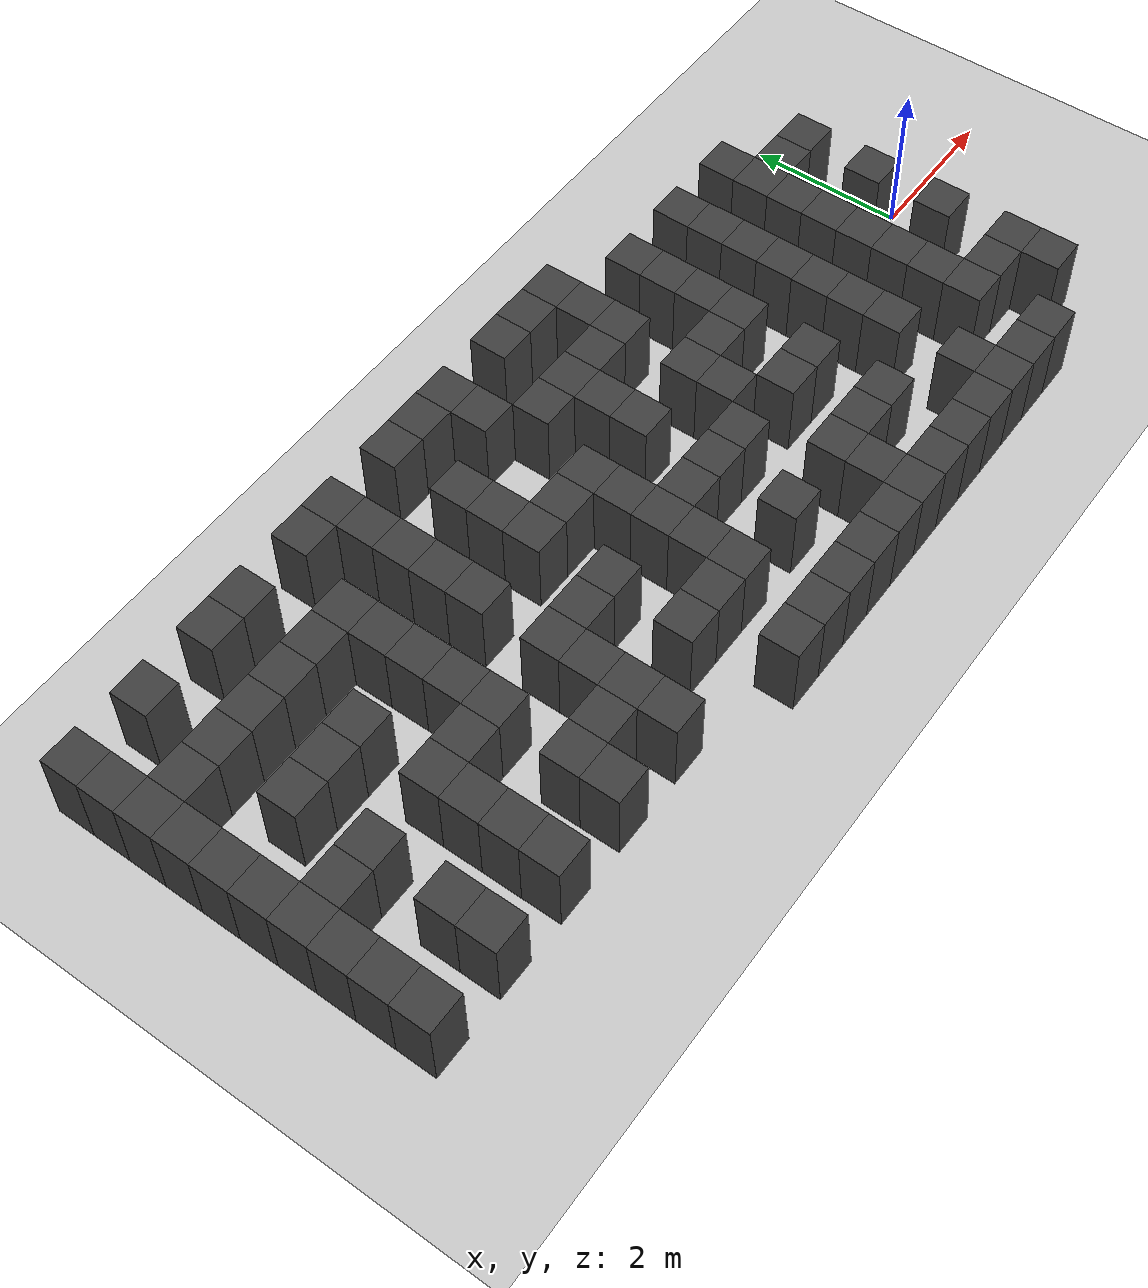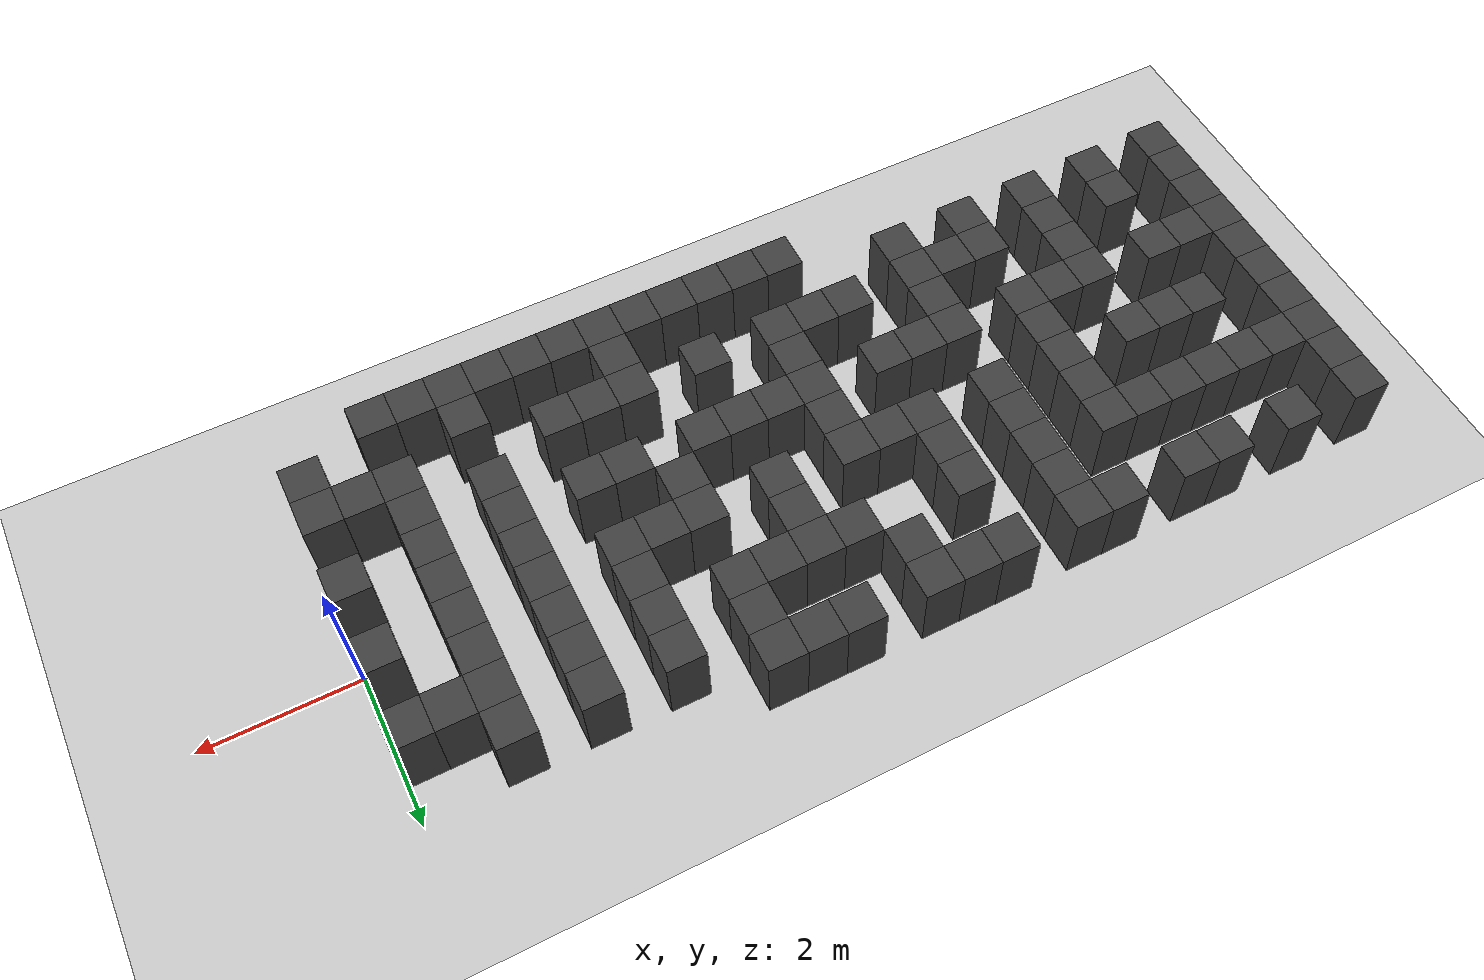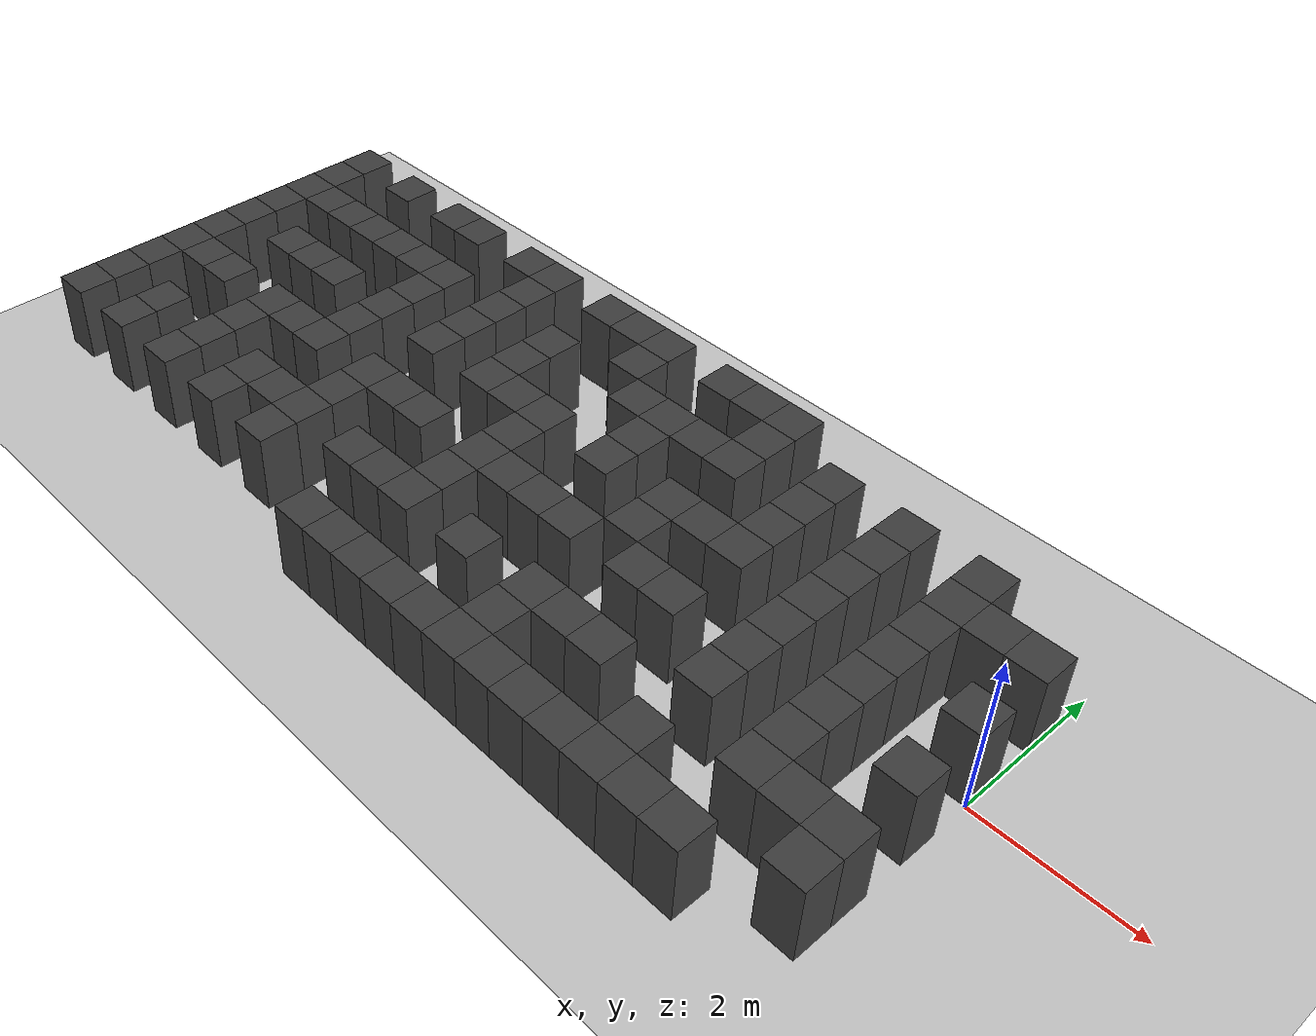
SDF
<sdf version="1.7">
 <world name="map_17508">
  <model name="ground_plane">
   <static>true</static>
   <link name="link">
    <collision name="collision">
     <geometry><plane><normal>0 0 1</normal><size>200 200</size></plane></geometry>
    </collision>
    <visual name="visual">
     <geometry><plane><normal>0 0 1</normal><size>200 200</size></plane></geometry>
     <material><ambient>0.8 0.8 0.8 1</ambient><diffuse>0.8 0.8 0.8 1</diffuse></material>
    </visual>
   </link>
  </model>
  <model name="maze_environment">
   <static>true</static>
   <link name="wall_492">
    <pose>-12.250 2.250 0.500 0 0 0</pose>
    <collision name="col"><geometry><box><size>0.5 0.5 1.0</size></box></geometry></collision>
    <visual name="vis">
     <geometry><box><size>0.5 0.5 1.0</size></box></geometry>
     <material><ambient>0.15 0.15 0.15 1</ambient><diffuse>0.25 0.25 0.25 1</diffuse></material>
    </visual>
   </link>
   <link name="wall_493">
    <pose>-11.250 2.250 0.500 0 0 0</pose>
    <collision name="col"><geometry><box><size>0.5 0.5 1.0</size></box></geometry></collision>
    <visual name="vis">
     <geometry><box><size>0.5 0.5 1.0</size></box></geometry>
     <material><ambient>0.15 0.15 0.15 1</ambient><diffuse>0.25 0.25 0.25 1</diffuse></material>
    </visual>
   </link>
   <link name="wall_494">
    <pose>-10.250 2.250 0.500 0 0 0</pose>
    <collision name="col"><geometry><box><size>0.5 0.5 1.0</size></box></geometry></collision>
    <visual name="vis">
     <geometry><box><size>0.5 0.5 1.0</size></box></geometry>
     <material><ambient>0.15 0.15 0.15 1</ambient><diffuse>0.25 0.25 0.25 1</diffuse></material>
    </visual>
   </link>
   <link name="wall_495">
    <pose>-9.750 2.250 0.500 0 0 0</pose>
    <collision name="col"><geometry><box><size>0.5 0.5 1.0</size></box></geometry></collision>
    <visual name="vis">
     <geometry><box><size>0.5 0.5 1.0</size></box></geometry>
     <material><ambient>0.15 0.15 0.15 1</ambient><diffuse>0.25 0.25 0.25 1</diffuse></material>
    </visual>
   </link>
   <link name="wall_496">
    <pose>-8.750 2.250 0.500 0 0 0</pose>
    <collision name="col"><geometry><box><size>0.5 0.5 1.0</size></box></geometry></collision>
    <visual name="vis">
     <geometry><box><size>0.5 0.5 1.0</size></box></geometry>
     <material><ambient>0.15 0.15 0.15 1</ambient><diffuse>0.25 0.25 0.25 1</diffuse></material>
    </visual>
   </link>
   <link name="wall_497">
    <pose>-8.250 2.250 0.500 0 0 0</pose>
    <collision name="col"><geometry><box><size>0.5 0.5 1.0</size></box></geometry></collision>
    <visual name="vis">
     <geometry><box><size>0.5 0.5 1.0</size></box></geometry>
     <material><ambient>0.15 0.15 0.15 1</ambient><diffuse>0.25 0.25 0.25 1</diffuse></material>
    </visual>
   </link>
   <link name="wall_498">
    <pose>-7.250 2.250 0.500 0 0 0</pose>
    <collision name="col"><geometry><box><size>0.5 0.5 1.0</size></box></geometry></collision>
    <visual name="vis">
     <geometry><box><size>0.5 0.5 1.0</size></box></geometry>
     <material><ambient>0.15 0.15 0.15 1</ambient><diffuse>0.25 0.25 0.25 1</diffuse></material>
    </visual>
   </link>
   <link name="wall_499">
    <pose>-6.750 2.250 0.500 0 0 0</pose>
    <collision name="col"><geometry><box><size>0.5 0.5 1.0</size></box></geometry></collision>
    <visual name="vis">
     <geometry><box><size>0.5 0.5 1.0</size></box></geometry>
     <material><ambient>0.15 0.15 0.15 1</ambient><diffuse>0.25 0.25 0.25 1</diffuse></material>
    </visual>
   </link>
   <link name="wall_500">
    <pose>-6.250 2.250 0.500 0 0 0</pose>
    <collision name="col"><geometry><box><size>0.5 0.5 1.0</size></box></geometry></collision>
    <visual name="vis">
     <geometry><box><size>0.5 0.5 1.0</size></box></geometry>
     <material><ambient>0.15 0.15 0.15 1</ambient><diffuse>0.25 0.25 0.25 1</diffuse></material>
    </visual>
   </link>
   <link name="wall_501">
    <pose>-5.250 2.250 0.500 0 0 0</pose>
    <collision name="col"><geometry><box><size>0.5 0.5 1.0</size></box></geometry></collision>
    <visual name="vis">
     <geometry><box><size>0.5 0.5 1.0</size></box></geometry>
     <material><ambient>0.15 0.15 0.15 1</ambient><diffuse>0.25 0.25 0.25 1</diffuse></material>
    </visual>
   </link>
   <link name="wall_502">
    <pose>-4.750 2.250 0.500 0 0 0</pose>
    <collision name="col"><geometry><box><size>0.5 0.5 1.0</size></box></geometry></collision>
    <visual name="vis">
     <geometry><box><size>0.5 0.5 1.0</size></box></geometry>
     <material><ambient>0.15 0.15 0.15 1</ambient><diffuse>0.25 0.25 0.25 1</diffuse></material>
    </visual>
   </link>
   <link name="wall_503">
    <pose>-4.250 2.250 0.500 0 0 0</pose>
    <collision name="col"><geometry><box><size>0.5 0.5 1.0</size></box></geometry></collision>
    <visual name="vis">
     <geometry><box><size>0.5 0.5 1.0</size></box></geometry>
     <material><ambient>0.15 0.15 0.15 1</ambient><diffuse>0.25 0.25 0.25 1</diffuse></material>
    </visual>
   </link>
   <link name="wall_528">
    <pose>-12.250 1.750 0.500 0 0 0</pose>
    <collision name="col"><geometry><box><size>0.5 0.5 1.0</size></box></geometry></collision>
    <visual name="vis">
     <geometry><box><size>0.5 0.5 1.0</size></box></geometry>
     <material><ambient>0.15 0.15 0.15 1</ambient><diffuse>0.25 0.25 0.25 1</diffuse></material>
    </visual>
   </link>
   <link name="wall_529">
    <pose>-8.250 1.750 0.500 0 0 0</pose>
    <collision name="col"><geometry><box><size>0.5 0.5 1.0</size></box></geometry></collision>
    <visual name="vis">
     <geometry><box><size>0.5 0.5 1.0</size></box></geometry>
     <material><ambient>0.15 0.15 0.15 1</ambient><diffuse>0.25 0.25 0.25 1</diffuse></material>
    </visual>
   </link>
   <link name="wall_530">
    <pose>-6.250 1.750 0.500 0 0 0</pose>
    <collision name="col"><geometry><box><size>0.5 0.5 1.0</size></box></geometry></collision>
    <visual name="vis">
     <geometry><box><size>0.5 0.5 1.0</size></box></geometry>
     <material><ambient>0.15 0.15 0.15 1</ambient><diffuse>0.25 0.25 0.25 1</diffuse></material>
    </visual>
   </link>
   <link name="wall_531">
    <pose>-4.250 1.750 0.500 0 0 0</pose>
    <collision name="col"><geometry><box><size>0.5 0.5 1.0</size></box></geometry></collision>
    <visual name="vis">
     <geometry><box><size>0.5 0.5 1.0</size></box></geometry>
     <material><ambient>0.15 0.15 0.15 1</ambient><diffuse>0.25 0.25 0.25 1</diffuse></material>
    </visual>
   </link>
   <link name="wall_532">
    <pose>-3.250 1.750 0.500 0 0 0</pose>
    <collision name="col"><geometry><box><size>0.5 0.5 1.0</size></box></geometry></collision>
    <visual name="vis">
     <geometry><box><size>0.5 0.5 1.0</size></box></geometry>
     <material><ambient>0.15 0.15 0.15 1</ambient><diffuse>0.25 0.25 0.25 1</diffuse></material>
    </visual>
   </link>
   <link name="wall_533">
    <pose>-2.250 1.750 0.500 0 0 0</pose>
    <collision name="col"><geometry><box><size>0.5 0.5 1.0</size></box></geometry></collision>
    <visual name="vis">
     <geometry><box><size>0.5 0.5 1.0</size></box></geometry>
     <material><ambient>0.15 0.15 0.15 1</ambient><diffuse>0.25 0.25 0.25 1</diffuse></material>
    </visual>
   </link>
   <link name="wall_534">
    <pose>-1.250 1.750 0.500 0 0 0</pose>
    <collision name="col"><geometry><box><size>0.5 0.5 1.0</size></box></geometry></collision>
    <visual name="vis">
     <geometry><box><size>0.5 0.5 1.0</size></box></geometry>
     <material><ambient>0.15 0.15 0.15 1</ambient><diffuse>0.25 0.25 0.25 1</diffuse></material>
    </visual>
   </link>
   <link name="wall_542">
    <pose>-12.250 1.250 0.500 0 0 0</pose>
    <collision name="col"><geometry><box><size>0.5 0.5 1.0</size></box></geometry></collision>
    <visual name="vis">
     <geometry><box><size>0.5 0.5 1.0</size></box></geometry>
     <material><ambient>0.15 0.15 0.15 1</ambient><diffuse>0.25 0.25 0.25 1</diffuse></material>
    </visual>
   </link>
   <link name="wall_543">
    <pose>-11.750 1.250 0.500 0 0 0</pose>
    <collision name="col"><geometry><box><size>0.5 0.5 1.0</size></box></geometry></collision>
    <visual name="vis">
     <geometry><box><size>0.5 0.5 1.0</size></box></geometry>
     <material><ambient>0.15 0.15 0.15 1</ambient><diffuse>0.25 0.25 0.25 1</diffuse></material>
    </visual>
   </link>
   <link name="wall_544">
    <pose>-11.250 1.250 0.500 0 0 0</pose>
    <collision name="col"><geometry><box><size>0.5 0.5 1.0</size></box></geometry></collision>
    <visual name="vis">
     <geometry><box><size>0.5 0.5 1.0</size></box></geometry>
     <material><ambient>0.15 0.15 0.15 1</ambient><diffuse>0.25 0.25 0.25 1</diffuse></material>
    </visual>
   </link>
   <link name="wall_545">
    <pose>-10.750 1.250 0.500 0 0 0</pose>
    <collision name="col"><geometry><box><size>0.5 0.5 1.0</size></box></geometry></collision>
    <visual name="vis">
     <geometry><box><size>0.5 0.5 1.0</size></box></geometry>
     <material><ambient>0.15 0.15 0.15 1</ambient><diffuse>0.25 0.25 0.25 1</diffuse></material>
    </visual>
   </link>
   <link name="wall_546">
    <pose>-10.250 1.250 0.500 0 0 0</pose>
    <collision name="col"><geometry><box><size>0.5 0.5 1.0</size></box></geometry></collision>
    <visual name="vis">
     <geometry><box><size>0.5 0.5 1.0</size></box></geometry>
     <material><ambient>0.15 0.15 0.15 1</ambient><diffuse>0.25 0.25 0.25 1</diffuse></material>
    </visual>
   </link>
   <link name="wall_547">
    <pose>-9.750 1.250 0.500 0 0 0</pose>
    <collision name="col"><geometry><box><size>0.5 0.5 1.0</size></box></geometry></collision>
    <visual name="vis">
     <geometry><box><size>0.5 0.5 1.0</size></box></geometry>
     <material><ambient>0.15 0.15 0.15 1</ambient><diffuse>0.25 0.25 0.25 1</diffuse></material>
    </visual>
   </link>
   <link name="wall_548">
    <pose>-9.250 1.250 0.500 0 0 0</pose>
    <collision name="col"><geometry><box><size>0.5 0.5 1.0</size></box></geometry></collision>
    <visual name="vis">
     <geometry><box><size>0.5 0.5 1.0</size></box></geometry>
     <material><ambient>0.15 0.15 0.15 1</ambient><diffuse>0.25 0.25 0.25 1</diffuse></material>
    </visual>
   </link>
   <link name="wall_549">
    <pose>-8.250 1.250 0.500 0 0 0</pose>
    <collision name="col"><geometry><box><size>0.5 0.5 1.0</size></box></geometry></collision>
    <visual name="vis">
     <geometry><box><size>0.5 0.5 1.0</size></box></geometry>
     <material><ambient>0.15 0.15 0.15 1</ambient><diffuse>0.25 0.25 0.25 1</diffuse></material>
    </visual>
   </link>
   <link name="wall_550">
    <pose>-7.250 1.250 0.500 0 0 0</pose>
    <collision name="col"><geometry><box><size>0.5 0.5 1.0</size></box></geometry></collision>
    <visual name="vis">
     <geometry><box><size>0.5 0.5 1.0</size></box></geometry>
     <material><ambient>0.15 0.15 0.15 1</ambient><diffuse>0.25 0.25 0.25 1</diffuse></material>
    </visual>
   </link>
   <link name="wall_551">
    <pose>-5.750 1.250 0.500 0 0 0</pose>
    <collision name="col"><geometry><box><size>0.5 0.5 1.0</size></box></geometry></collision>
    <visual name="vis">
     <geometry><box><size>0.5 0.5 1.0</size></box></geometry>
     <material><ambient>0.15 0.15 0.15 1</ambient><diffuse>0.25 0.25 0.25 1</diffuse></material>
    </visual>
   </link>
   <link name="wall_552">
    <pose>-5.250 1.250 0.500 0 0 0</pose>
    <collision name="col"><geometry><box><size>0.5 0.5 1.0</size></box></geometry></collision>
    <visual name="vis">
     <geometry><box><size>0.5 0.5 1.0</size></box></geometry>
     <material><ambient>0.15 0.15 0.15 1</ambient><diffuse>0.25 0.25 0.25 1</diffuse></material>
    </visual>
   </link>
   <link name="wall_553">
    <pose>-4.750 1.250 0.500 0 0 0</pose>
    <collision name="col"><geometry><box><size>0.5 0.5 1.0</size></box></geometry></collision>
    <visual name="vis">
     <geometry><box><size>0.5 0.5 1.0</size></box></geometry>
     <material><ambient>0.15 0.15 0.15 1</ambient><diffuse>0.25 0.25 0.25 1</diffuse></material>
    </visual>
   </link>
   <link name="wall_554">
    <pose>-4.250 1.250 0.500 0 0 0</pose>
    <collision name="col"><geometry><box><size>0.5 0.5 1.0</size></box></geometry></collision>
    <visual name="vis">
     <geometry><box><size>0.5 0.5 1.0</size></box></geometry>
     <material><ambient>0.15 0.15 0.15 1</ambient><diffuse>0.25 0.25 0.25 1</diffuse></material>
    </visual>
   </link>
   <link name="wall_555">
    <pose>-3.250 1.250 0.500 0 0 0</pose>
    <collision name="col"><geometry><box><size>0.5 0.5 1.0</size></box></geometry></collision>
    <visual name="vis">
     <geometry><box><size>0.5 0.5 1.0</size></box></geometry>
     <material><ambient>0.15 0.15 0.15 1</ambient><diffuse>0.25 0.25 0.25 1</diffuse></material>
    </visual>
   </link>
   <link name="wall_556">
    <pose>-2.250 1.250 0.500 0 0 0</pose>
    <collision name="col"><geometry><box><size>0.5 0.5 1.0</size></box></geometry></collision>
    <visual name="vis">
     <geometry><box><size>0.5 0.5 1.0</size></box></geometry>
     <material><ambient>0.15 0.15 0.15 1</ambient><diffuse>0.25 0.25 0.25 1</diffuse></material>
    </visual>
   </link>
   <link name="wall_557">
    <pose>-1.250 1.250 0.500 0 0 0</pose>
    <collision name="col"><geometry><box><size>0.5 0.5 1.0</size></box></geometry></collision>
    <visual name="vis">
     <geometry><box><size>0.5 0.5 1.0</size></box></geometry>
     <material><ambient>0.15 0.15 0.15 1</ambient><diffuse>0.25 0.25 0.25 1</diffuse></material>
    </visual>
   </link>
   <link name="wall_558">
    <pose>-0.750 1.250 0.500 0 0 0</pose>
    <collision name="col"><geometry><box><size>0.5 0.5 1.0</size></box></geometry></collision>
    <visual name="vis">
     <geometry><box><size>0.5 0.5 1.0</size></box></geometry>
     <material><ambient>0.15 0.15 0.15 1</ambient><diffuse>0.25 0.25 0.25 1</diffuse></material>
    </visual>
   </link>
   <link name="wall_559">
    <pose>-0.250 1.250 0.500 0 0 0</pose>
    <collision name="col"><geometry><box><size>0.5 0.5 1.0</size></box></geometry></collision>
    <visual name="vis">
     <geometry><box><size>0.5 0.5 1.0</size></box></geometry>
     <material><ambient>0.15 0.15 0.15 1</ambient><diffuse>0.25 0.25 0.25 1</diffuse></material>
    </visual>
   </link>
   <link name="wall_576">
    <pose>-12.250 0.750 0.500 0 0 0</pose>
    <collision name="col"><geometry><box><size>0.5 0.5 1.0</size></box></geometry></collision>
    <visual name="vis">
     <geometry><box><size>0.5 0.5 1.0</size></box></geometry>
     <material><ambient>0.15 0.15 0.15 1</ambient><diffuse>0.25 0.25 0.25 1</diffuse></material>
    </visual>
   </link>
   <link name="wall_577">
    <pose>-9.250 0.750 0.500 0 0 0</pose>
    <collision name="col"><geometry><box><size>0.5 0.5 1.0</size></box></geometry></collision>
    <visual name="vis">
     <geometry><box><size>0.5 0.5 1.0</size></box></geometry>
     <material><ambient>0.15 0.15 0.15 1</ambient><diffuse>0.25 0.25 0.25 1</diffuse></material>
    </visual>
   </link>
   <link name="wall_578">
    <pose>-8.250 0.750 0.500 0 0 0</pose>
    <collision name="col"><geometry><box><size>0.5 0.5 1.0</size></box></geometry></collision>
    <visual name="vis">
     <geometry><box><size>0.5 0.5 1.0</size></box></geometry>
     <material><ambient>0.15 0.15 0.15 1</ambient><diffuse>0.25 0.25 0.25 1</diffuse></material>
    </visual>
   </link>
   <link name="wall_579">
    <pose>-7.250 0.750 0.500 0 0 0</pose>
    <collision name="col"><geometry><box><size>0.5 0.5 1.0</size></box></geometry></collision>
    <visual name="vis">
     <geometry><box><size>0.5 0.5 1.0</size></box></geometry>
     <material><ambient>0.15 0.15 0.15 1</ambient><diffuse>0.25 0.25 0.25 1</diffuse></material>
    </visual>
   </link>
   <link name="wall_580">
    <pose>-5.250 0.750 0.500 0 0 0</pose>
    <collision name="col"><geometry><box><size>0.5 0.5 1.0</size></box></geometry></collision>
    <visual name="vis">
     <geometry><box><size>0.5 0.5 1.0</size></box></geometry>
     <material><ambient>0.15 0.15 0.15 1</ambient><diffuse>0.25 0.25 0.25 1</diffuse></material>
    </visual>
   </link>
   <link name="wall_581">
    <pose>-3.250 0.750 0.500 0 0 0</pose>
    <collision name="col"><geometry><box><size>0.5 0.5 1.0</size></box></geometry></collision>
    <visual name="vis">
     <geometry><box><size>0.5 0.5 1.0</size></box></geometry>
     <material><ambient>0.15 0.15 0.15 1</ambient><diffuse>0.25 0.25 0.25 1</diffuse></material>
    </visual>
   </link>
   <link name="wall_582">
    <pose>-2.250 0.750 0.500 0 0 0</pose>
    <collision name="col"><geometry><box><size>0.5 0.5 1.0</size></box></geometry></collision>
    <visual name="vis">
     <geometry><box><size>0.5 0.5 1.0</size></box></geometry>
     <material><ambient>0.15 0.15 0.15 1</ambient><diffuse>0.25 0.25 0.25 1</diffuse></material>
    </visual>
   </link>
   <link name="wall_583">
    <pose>-1.250 0.750 0.500 0 0 0</pose>
    <collision name="col"><geometry><box><size>0.5 0.5 1.0</size></box></geometry></collision>
    <visual name="vis">
     <geometry><box><size>0.5 0.5 1.0</size></box></geometry>
     <material><ambient>0.15 0.15 0.15 1</ambient><diffuse>0.25 0.25 0.25 1</diffuse></material>
    </visual>
   </link>
   <link name="wall_592">
    <pose>-12.250 0.250 0.500 0 0 0</pose>
    <collision name="col"><geometry><box><size>0.5 0.5 1.0</size></box></geometry></collision>
    <visual name="vis">
     <geometry><box><size>0.5 0.5 1.0</size></box></geometry>
     <material><ambient>0.15 0.15 0.15 1</ambient><diffuse>0.25 0.25 0.25 1</diffuse></material>
    </visual>
   </link>
   <link name="wall_593">
    <pose>-11.250 0.250 0.500 0 0 0</pose>
    <collision name="col"><geometry><box><size>0.5 0.5 1.0</size></box></geometry></collision>
    <visual name="vis">
     <geometry><box><size>0.5 0.5 1.0</size></box></geometry>
     <material><ambient>0.15 0.15 0.15 1</ambient><diffuse>0.25 0.25 0.25 1</diffuse></material>
    </visual>
   </link>
   <link name="wall_594">
    <pose>-10.750 0.250 0.500 0 0 0</pose>
    <collision name="col"><geometry><box><size>0.5 0.5 1.0</size></box></geometry></collision>
    <visual name="vis">
     <geometry><box><size>0.5 0.5 1.0</size></box></geometry>
     <material><ambient>0.15 0.15 0.15 1</ambient><diffuse>0.25 0.25 0.25 1</diffuse></material>
    </visual>
   </link>
   <link name="wall_595">
    <pose>-10.250 0.250 0.500 0 0 0</pose>
    <collision name="col"><geometry><box><size>0.5 0.5 1.0</size></box></geometry></collision>
    <visual name="vis">
     <geometry><box><size>0.5 0.5 1.0</size></box></geometry>
     <material><ambient>0.15 0.15 0.15 1</ambient><diffuse>0.25 0.25 0.25 1</diffuse></material>
    </visual>
   </link>
   <link name="wall_596">
    <pose>-9.250 0.250 0.500 0 0 0</pose>
    <collision name="col"><geometry><box><size>0.5 0.5 1.0</size></box></geometry></collision>
    <visual name="vis">
     <geometry><box><size>0.5 0.5 1.0</size></box></geometry>
     <material><ambient>0.15 0.15 0.15 1</ambient><diffuse>0.25 0.25 0.25 1</diffuse></material>
    </visual>
   </link>
   <link name="wall_597">
    <pose>-8.250 0.250 0.500 0 0 0</pose>
    <collision name="col"><geometry><box><size>0.5 0.5 1.0</size></box></geometry></collision>
    <visual name="vis">
     <geometry><box><size>0.5 0.5 1.0</size></box></geometry>
     <material><ambient>0.15 0.15 0.15 1</ambient><diffuse>0.25 0.25 0.25 1</diffuse></material>
    </visual>
   </link>
   <link name="wall_598">
    <pose>-7.250 0.250 0.500 0 0 0</pose>
    <collision name="col"><geometry><box><size>0.5 0.5 1.0</size></box></geometry></collision>
    <visual name="vis">
     <geometry><box><size>0.5 0.5 1.0</size></box></geometry>
     <material><ambient>0.15 0.15 0.15 1</ambient><diffuse>0.25 0.25 0.25 1</diffuse></material>
    </visual>
   </link>
   <link name="wall_599">
    <pose>-6.750 0.250 0.500 0 0 0</pose>
    <collision name="col"><geometry><box><size>0.5 0.5 1.0</size></box></geometry></collision>
    <visual name="vis">
     <geometry><box><size>0.5 0.5 1.0</size></box></geometry>
     <material><ambient>0.15 0.15 0.15 1</ambient><diffuse>0.25 0.25 0.25 1</diffuse></material>
    </visual>
   </link>
   <link name="wall_600">
    <pose>-6.250 0.250 0.500 0 0 0</pose>
    <collision name="col"><geometry><box><size>0.5 0.5 1.0</size></box></geometry></collision>
    <visual name="vis">
     <geometry><box><size>0.5 0.5 1.0</size></box></geometry>
     <material><ambient>0.15 0.15 0.15 1</ambient><diffuse>0.25 0.25 0.25 1</diffuse></material>
    </visual>
   </link>
   <link name="wall_601">
    <pose>-5.250 0.250 0.500 0 0 0</pose>
    <collision name="col"><geometry><box><size>0.5 0.5 1.0</size></box></geometry></collision>
    <visual name="vis">
     <geometry><box><size>0.5 0.5 1.0</size></box></geometry>
     <material><ambient>0.15 0.15 0.15 1</ambient><diffuse>0.25 0.25 0.25 1</diffuse></material>
    </visual>
   </link>
   <link name="wall_602">
    <pose>-4.250 0.250 0.500 0 0 0</pose>
    <collision name="col"><geometry><box><size>0.5 0.5 1.0</size></box></geometry></collision>
    <visual name="vis">
     <geometry><box><size>0.5 0.5 1.0</size></box></geometry>
     <material><ambient>0.15 0.15 0.15 1</ambient><diffuse>0.25 0.25 0.25 1</diffuse></material>
    </visual>
   </link>
   <link name="wall_603">
    <pose>-3.750 0.250 0.500 0 0 0</pose>
    <collision name="col"><geometry><box><size>0.5 0.5 1.0</size></box></geometry></collision>
    <visual name="vis">
     <geometry><box><size>0.5 0.5 1.0</size></box></geometry>
     <material><ambient>0.15 0.15 0.15 1</ambient><diffuse>0.25 0.25 0.25 1</diffuse></material>
    </visual>
   </link>
   <link name="wall_604">
    <pose>-3.250 0.250 0.500 0 0 0</pose>
    <collision name="col"><geometry><box><size>0.5 0.5 1.0</size></box></geometry></collision>
    <visual name="vis">
     <geometry><box><size>0.5 0.5 1.0</size></box></geometry>
     <material><ambient>0.15 0.15 0.15 1</ambient><diffuse>0.25 0.25 0.25 1</diffuse></material>
    </visual>
   </link>
   <link name="wall_605">
    <pose>-2.250 0.250 0.500 0 0 0</pose>
    <collision name="col"><geometry><box><size>0.5 0.5 1.0</size></box></geometry></collision>
    <visual name="vis">
     <geometry><box><size>0.5 0.5 1.0</size></box></geometry>
     <material><ambient>0.15 0.15 0.15 1</ambient><diffuse>0.25 0.25 0.25 1</diffuse></material>
    </visual>
   </link>
   <link name="wall_606">
    <pose>-1.250 0.250 0.500 0 0 0</pose>
    <collision name="col"><geometry><box><size>0.5 0.5 1.0</size></box></geometry></collision>
    <visual name="vis">
     <geometry><box><size>0.5 0.5 1.0</size></box></geometry>
     <material><ambient>0.15 0.15 0.15 1</ambient><diffuse>0.25 0.25 0.25 1</diffuse></material>
    </visual>
   </link>
   <link name="wall_607">
    <pose>-0.250 0.250 0.500 0 0 0</pose>
    <collision name="col"><geometry><box><size>0.5 0.5 1.0</size></box></geometry></collision>
    <visual name="vis">
     <geometry><box><size>0.5 0.5 1.0</size></box></geometry>
     <material><ambient>0.15 0.15 0.15 1</ambient><diffuse>0.25 0.25 0.25 1</diffuse></material>
    </visual>
   </link>
   <link name="wall_626">
    <pose>-12.250 -0.250 0.500 0 0 0</pose>
    <collision name="col"><geometry><box><size>0.5 0.5 1.0</size></box></geometry></collision>
    <visual name="vis">
     <geometry><box><size>0.5 0.5 1.0</size></box></geometry>
     <material><ambient>0.15 0.15 0.15 1</ambient><diffuse>0.25 0.25 0.25 1</diffuse></material>
    </visual>
   </link>
   <link name="wall_627">
    <pose>-9.250 -0.250 0.500 0 0 0</pose>
    <collision name="col"><geometry><box><size>0.5 0.5 1.0</size></box></geometry></collision>
    <visual name="vis">
     <geometry><box><size>0.5 0.5 1.0</size></box></geometry>
     <material><ambient>0.15 0.15 0.15 1</ambient><diffuse>0.25 0.25 0.25 1</diffuse></material>
    </visual>
   </link>
   <link name="wall_628">
    <pose>-6.250 -0.250 0.500 0 0 0</pose>
    <collision name="col"><geometry><box><size>0.5 0.5 1.0</size></box></geometry></collision>
    <visual name="vis">
     <geometry><box><size>0.5 0.5 1.0</size></box></geometry>
     <material><ambient>0.15 0.15 0.15 1</ambient><diffuse>0.25 0.25 0.25 1</diffuse></material>
    </visual>
   </link>
   <link name="wall_629">
    <pose>-4.250 -0.250 0.500 0 0 0</pose>
    <collision name="col"><geometry><box><size>0.5 0.5 1.0</size></box></geometry></collision>
    <visual name="vis">
     <geometry><box><size>0.5 0.5 1.0</size></box></geometry>
     <material><ambient>0.15 0.15 0.15 1</ambient><diffuse>0.25 0.25 0.25 1</diffuse></material>
    </visual>
   </link>
   <link name="wall_630">
    <pose>-2.250 -0.250 0.500 0 0 0</pose>
    <collision name="col"><geometry><box><size>0.5 0.5 1.0</size></box></geometry></collision>
    <visual name="vis">
     <geometry><box><size>0.5 0.5 1.0</size></box></geometry>
     <material><ambient>0.15 0.15 0.15 1</ambient><diffuse>0.25 0.25 0.25 1</diffuse></material>
    </visual>
   </link>
   <link name="wall_631">
    <pose>-1.250 -0.250 0.500 0 0 0</pose>
    <collision name="col"><geometry><box><size>0.5 0.5 1.0</size></box></geometry></collision>
    <visual name="vis">
     <geometry><box><size>0.5 0.5 1.0</size></box></geometry>
     <material><ambient>0.15 0.15 0.15 1</ambient><diffuse>0.25 0.25 0.25 1</diffuse></material>
    </visual>
   </link>
   <link name="wall_639">
    <pose>-12.250 -0.750 0.500 0 0 0</pose>
    <collision name="col"><geometry><box><size>0.5 0.5 1.0</size></box></geometry></collision>
    <visual name="vis">
     <geometry><box><size>0.5 0.5 1.0</size></box></geometry>
     <material><ambient>0.15 0.15 0.15 1</ambient><diffuse>0.25 0.25 0.25 1</diffuse></material>
    </visual>
   </link>
   <link name="wall_640">
    <pose>-11.750 -0.750 0.500 0 0 0</pose>
    <collision name="col"><geometry><box><size>0.5 0.5 1.0</size></box></geometry></collision>
    <visual name="vis">
     <geometry><box><size>0.5 0.5 1.0</size></box></geometry>
     <material><ambient>0.15 0.15 0.15 1</ambient><diffuse>0.25 0.25 0.25 1</diffuse></material>
    </visual>
   </link>
   <link name="wall_641">
    <pose>-11.250 -0.750 0.500 0 0 0</pose>
    <collision name="col"><geometry><box><size>0.5 0.5 1.0</size></box></geometry></collision>
    <visual name="vis">
     <geometry><box><size>0.5 0.5 1.0</size></box></geometry>
     <material><ambient>0.15 0.15 0.15 1</ambient><diffuse>0.25 0.25 0.25 1</diffuse></material>
    </visual>
   </link>
   <link name="wall_642">
    <pose>-10.250 -0.750 0.500 0 0 0</pose>
    <collision name="col"><geometry><box><size>0.5 0.5 1.0</size></box></geometry></collision>
    <visual name="vis">
     <geometry><box><size>0.5 0.5 1.0</size></box></geometry>
     <material><ambient>0.15 0.15 0.15 1</ambient><diffuse>0.25 0.25 0.25 1</diffuse></material>
    </visual>
   </link>
   <link name="wall_643">
    <pose>-9.750 -0.750 0.500 0 0 0</pose>
    <collision name="col"><geometry><box><size>0.5 0.5 1.0</size></box></geometry></collision>
    <visual name="vis">
     <geometry><box><size>0.5 0.5 1.0</size></box></geometry>
     <material><ambient>0.15 0.15 0.15 1</ambient><diffuse>0.25 0.25 0.25 1</diffuse></material>
    </visual>
   </link>
   <link name="wall_644">
    <pose>-9.250 -0.750 0.500 0 0 0</pose>
    <collision name="col"><geometry><box><size>0.5 0.5 1.0</size></box></geometry></collision>
    <visual name="vis">
     <geometry><box><size>0.5 0.5 1.0</size></box></geometry>
     <material><ambient>0.15 0.15 0.15 1</ambient><diffuse>0.25 0.25 0.25 1</diffuse></material>
    </visual>
   </link>
   <link name="wall_645">
    <pose>-8.250 -0.750 0.500 0 0 0</pose>
    <collision name="col"><geometry><box><size>0.5 0.5 1.0</size></box></geometry></collision>
    <visual name="vis">
     <geometry><box><size>0.5 0.5 1.0</size></box></geometry>
     <material><ambient>0.15 0.15 0.15 1</ambient><diffuse>0.25 0.25 0.25 1</diffuse></material>
    </visual>
   </link>
   <link name="wall_646">
    <pose>-7.750 -0.750 0.500 0 0 0</pose>
    <collision name="col"><geometry><box><size>0.5 0.5 1.0</size></box></geometry></collision>
    <visual name="vis">
     <geometry><box><size>0.5 0.5 1.0</size></box></geometry>
     <material><ambient>0.15 0.15 0.15 1</ambient><diffuse>0.25 0.25 0.25 1</diffuse></material>
    </visual>
   </link>
   <link name="wall_647">
    <pose>-7.250 -0.750 0.500 0 0 0</pose>
    <collision name="col"><geometry><box><size>0.5 0.5 1.0</size></box></geometry></collision>
    <visual name="vis">
     <geometry><box><size>0.5 0.5 1.0</size></box></geometry>
     <material><ambient>0.15 0.15 0.15 1</ambient><diffuse>0.25 0.25 0.25 1</diffuse></material>
    </visual>
   </link>
   <link name="wall_648">
    <pose>-6.250 -0.750 0.500 0 0 0</pose>
    <collision name="col"><geometry><box><size>0.5 0.5 1.0</size></box></geometry></collision>
    <visual name="vis">
     <geometry><box><size>0.5 0.5 1.0</size></box></geometry>
     <material><ambient>0.15 0.15 0.15 1</ambient><diffuse>0.25 0.25 0.25 1</diffuse></material>
    </visual>
   </link>
   <link name="wall_649">
    <pose>-5.750 -0.750 0.500 0 0 0</pose>
    <collision name="col"><geometry><box><size>0.5 0.5 1.0</size></box></geometry></collision>
    <visual name="vis">
     <geometry><box><size>0.5 0.5 1.0</size></box></geometry>
     <material><ambient>0.15 0.15 0.15 1</ambient><diffuse>0.25 0.25 0.25 1</diffuse></material>
    </visual>
   </link>
   <link name="wall_650">
    <pose>-5.250 -0.750 0.500 0 0 0</pose>
    <collision name="col"><geometry><box><size>0.5 0.5 1.0</size></box></geometry></collision>
    <visual name="vis">
     <geometry><box><size>0.5 0.5 1.0</size></box></geometry>
     <material><ambient>0.15 0.15 0.15 1</ambient><diffuse>0.25 0.25 0.25 1</diffuse></material>
    </visual>
   </link>
   <link name="wall_651">
    <pose>-4.750 -0.750 0.500 0 0 0</pose>
    <collision name="col"><geometry><box><size>0.5 0.5 1.0</size></box></geometry></collision>
    <visual name="vis">
     <geometry><box><size>0.5 0.5 1.0</size></box></geometry>
     <material><ambient>0.15 0.15 0.15 1</ambient><diffuse>0.25 0.25 0.25 1</diffuse></material>
    </visual>
   </link>
   <link name="wall_652">
    <pose>-3.750 -0.750 0.500 0 0 0</pose>
    <collision name="col"><geometry><box><size>0.5 0.5 1.0</size></box></geometry></collision>
    <visual name="vis">
     <geometry><box><size>0.5 0.5 1.0</size></box></geometry>
     <material><ambient>0.15 0.15 0.15 1</ambient><diffuse>0.25 0.25 0.25 1</diffuse></material>
    </visual>
   </link>
   <link name="wall_653">
    <pose>-3.250 -0.750 0.500 0 0 0</pose>
    <collision name="col"><geometry><box><size>0.5 0.5 1.0</size></box></geometry></collision>
    <visual name="vis">
     <geometry><box><size>0.5 0.5 1.0</size></box></geometry>
     <material><ambient>0.15 0.15 0.15 1</ambient><diffuse>0.25 0.25 0.25 1</diffuse></material>
    </visual>
   </link>
   <link name="wall_654">
    <pose>-2.250 -0.750 0.500 0 0 0</pose>
    <collision name="col"><geometry><box><size>0.5 0.5 1.0</size></box></geometry></collision>
    <visual name="vis">
     <geometry><box><size>0.5 0.5 1.0</size></box></geometry>
     <material><ambient>0.15 0.15 0.15 1</ambient><diffuse>0.25 0.25 0.25 1</diffuse></material>
    </visual>
   </link>
   <link name="wall_655">
    <pose>-1.250 -0.750 0.500 0 0 0</pose>
    <collision name="col"><geometry><box><size>0.5 0.5 1.0</size></box></geometry></collision>
    <visual name="vis">
     <geometry><box><size>0.5 0.5 1.0</size></box></geometry>
     <material><ambient>0.15 0.15 0.15 1</ambient><diffuse>0.25 0.25 0.25 1</diffuse></material>
    </visual>
   </link>
   <link name="wall_656">
    <pose>-0.250 -0.750 0.500 0 0 0</pose>
    <collision name="col"><geometry><box><size>0.5 0.5 1.0</size></box></geometry></collision>
    <visual name="vis">
     <geometry><box><size>0.5 0.5 1.0</size></box></geometry>
     <material><ambient>0.15 0.15 0.15 1</ambient><diffuse>0.25 0.25 0.25 1</diffuse></material>
    </visual>
   </link>
   <link name="wall_674">
    <pose>-12.250 -1.250 0.500 0 0 0</pose>
    <collision name="col"><geometry><box><size>0.5 0.5 1.0</size></box></geometry></collision>
    <visual name="vis">
     <geometry><box><size>0.5 0.5 1.0</size></box></geometry>
     <material><ambient>0.15 0.15 0.15 1</ambient><diffuse>0.25 0.25 0.25 1</diffuse></material>
    </visual>
   </link>
   <link name="wall_675">
    <pose>-10.250 -1.250 0.500 0 0 0</pose>
    <collision name="col"><geometry><box><size>0.5 0.5 1.0</size></box></geometry></collision>
    <visual name="vis">
     <geometry><box><size>0.5 0.5 1.0</size></box></geometry>
     <material><ambient>0.15 0.15 0.15 1</ambient><diffuse>0.25 0.25 0.25 1</diffuse></material>
    </visual>
   </link>
   <link name="wall_676">
    <pose>-8.250 -1.250 0.500 0 0 0</pose>
    <collision name="col"><geometry><box><size>0.5 0.5 1.0</size></box></geometry></collision>
    <visual name="vis">
     <geometry><box><size>0.5 0.5 1.0</size></box></geometry>
     <material><ambient>0.15 0.15 0.15 1</ambient><diffuse>0.25 0.25 0.25 1</diffuse></material>
    </visual>
   </link>
   <link name="wall_677">
    <pose>-6.250 -1.250 0.500 0 0 0</pose>
    <collision name="col"><geometry><box><size>0.5 0.5 1.0</size></box></geometry></collision>
    <visual name="vis">
     <geometry><box><size>0.5 0.5 1.0</size></box></geometry>
     <material><ambient>0.15 0.15 0.15 1</ambient><diffuse>0.25 0.25 0.25 1</diffuse></material>
    </visual>
   </link>
   <link name="wall_678">
    <pose>-2.250 -1.250 0.500 0 0 0</pose>
    <collision name="col"><geometry><box><size>0.5 0.5 1.0</size></box></geometry></collision>
    <visual name="vis">
     <geometry><box><size>0.5 0.5 1.0</size></box></geometry>
     <material><ambient>0.15 0.15 0.15 1</ambient><diffuse>0.25 0.25 0.25 1</diffuse></material>
    </visual>
   </link>
   <link name="wall_679">
    <pose>-1.250 -1.250 0.500 0 0 0</pose>
    <collision name="col"><geometry><box><size>0.5 0.5 1.0</size></box></geometry></collision>
    <visual name="vis">
     <geometry><box><size>0.5 0.5 1.0</size></box></geometry>
     <material><ambient>0.15 0.15 0.15 1</ambient><diffuse>0.25 0.25 0.25 1</diffuse></material>
    </visual>
   </link>
   <link name="wall_689">
    <pose>-12.250 -1.750 0.500 0 0 0</pose>
    <collision name="col"><geometry><box><size>0.5 0.5 1.0</size></box></geometry></collision>
    <visual name="vis">
     <geometry><box><size>0.5 0.5 1.0</size></box></geometry>
     <material><ambient>0.15 0.15 0.15 1</ambient><diffuse>0.25 0.25 0.25 1</diffuse></material>
    </visual>
   </link>
   <link name="wall_690">
    <pose>-11.250 -1.750 0.500 0 0 0</pose>
    <collision name="col"><geometry><box><size>0.5 0.5 1.0</size></box></geometry></collision>
    <visual name="vis">
     <geometry><box><size>0.5 0.5 1.0</size></box></geometry>
     <material><ambient>0.15 0.15 0.15 1</ambient><diffuse>0.25 0.25 0.25 1</diffuse></material>
    </visual>
   </link>
   <link name="wall_691">
    <pose>-10.250 -1.750 0.500 0 0 0</pose>
    <collision name="col"><geometry><box><size>0.5 0.5 1.0</size></box></geometry></collision>
    <visual name="vis">
     <geometry><box><size>0.5 0.5 1.0</size></box></geometry>
     <material><ambient>0.15 0.15 0.15 1</ambient><diffuse>0.25 0.25 0.25 1</diffuse></material>
    </visual>
   </link>
   <link name="wall_692">
    <pose>-9.250 -1.750 0.500 0 0 0</pose>
    <collision name="col"><geometry><box><size>0.5 0.5 1.0</size></box></geometry></collision>
    <visual name="vis">
     <geometry><box><size>0.5 0.5 1.0</size></box></geometry>
     <material><ambient>0.15 0.15 0.15 1</ambient><diffuse>0.25 0.25 0.25 1</diffuse></material>
    </visual>
   </link>
   <link name="wall_693">
    <pose>-8.750 -1.750 0.500 0 0 0</pose>
    <collision name="col"><geometry><box><size>0.5 0.5 1.0</size></box></geometry></collision>
    <visual name="vis">
     <geometry><box><size>0.5 0.5 1.0</size></box></geometry>
     <material><ambient>0.15 0.15 0.15 1</ambient><diffuse>0.25 0.25 0.25 1</diffuse></material>
    </visual>
   </link>
   <link name="wall_694">
    <pose>-8.250 -1.750 0.500 0 0 0</pose>
    <collision name="col"><geometry><box><size>0.5 0.5 1.0</size></box></geometry></collision>
    <visual name="vis">
     <geometry><box><size>0.5 0.5 1.0</size></box></geometry>
     <material><ambient>0.15 0.15 0.15 1</ambient><diffuse>0.25 0.25 0.25 1</diffuse></material>
    </visual>
   </link>
   <link name="wall_695">
    <pose>-7.250 -1.750 0.500 0 0 0</pose>
    <collision name="col"><geometry><box><size>0.5 0.5 1.0</size></box></geometry></collision>
    <visual name="vis">
     <geometry><box><size>0.5 0.5 1.0</size></box></geometry>
     <material><ambient>0.15 0.15 0.15 1</ambient><diffuse>0.25 0.25 0.25 1</diffuse></material>
    </visual>
   </link>
   <link name="wall_696">
    <pose>-6.750 -1.750 0.500 0 0 0</pose>
    <collision name="col"><geometry><box><size>0.5 0.5 1.0</size></box></geometry></collision>
    <visual name="vis">
     <geometry><box><size>0.5 0.5 1.0</size></box></geometry>
     <material><ambient>0.15 0.15 0.15 1</ambient><diffuse>0.25 0.25 0.25 1</diffuse></material>
    </visual>
   </link>
   <link name="wall_697">
    <pose>-6.250 -1.750 0.500 0 0 0</pose>
    <collision name="col"><geometry><box><size>0.5 0.5 1.0</size></box></geometry></collision>
    <visual name="vis">
     <geometry><box><size>0.5 0.5 1.0</size></box></geometry>
     <material><ambient>0.15 0.15 0.15 1</ambient><diffuse>0.25 0.25 0.25 1</diffuse></material>
    </visual>
   </link>
   <link name="wall_698">
    <pose>-5.250 -1.750 0.500 0 0 0</pose>
    <collision name="col"><geometry><box><size>0.5 0.5 1.0</size></box></geometry></collision>
    <visual name="vis">
     <geometry><box><size>0.5 0.5 1.0</size></box></geometry>
     <material><ambient>0.15 0.15 0.15 1</ambient><diffuse>0.25 0.25 0.25 1</diffuse></material>
    </visual>
   </link>
   <link name="wall_699">
    <pose>-4.250 -1.750 0.500 0 0 0</pose>
    <collision name="col"><geometry><box><size>0.5 0.5 1.0</size></box></geometry></collision>
    <visual name="vis">
     <geometry><box><size>0.5 0.5 1.0</size></box></geometry>
     <material><ambient>0.15 0.15 0.15 1</ambient><diffuse>0.25 0.25 0.25 1</diffuse></material>
    </visual>
   </link>
   <link name="wall_700">
    <pose>-3.750 -1.750 0.500 0 0 0</pose>
    <collision name="col"><geometry><box><size>0.5 0.5 1.0</size></box></geometry></collision>
    <visual name="vis">
     <geometry><box><size>0.5 0.5 1.0</size></box></geometry>
     <material><ambient>0.15 0.15 0.15 1</ambient><diffuse>0.25 0.25 0.25 1</diffuse></material>
    </visual>
   </link>
   <link name="wall_701">
    <pose>-3.250 -1.750 0.500 0 0 0</pose>
    <collision name="col"><geometry><box><size>0.5 0.5 1.0</size></box></geometry></collision>
    <visual name="vis">
     <geometry><box><size>0.5 0.5 1.0</size></box></geometry>
     <material><ambient>0.15 0.15 0.15 1</ambient><diffuse>0.25 0.25 0.25 1</diffuse></material>
    </visual>
   </link>
   <link name="wall_702">
    <pose>-1.250 -1.750 0.500 0 0 0</pose>
    <collision name="col"><geometry><box><size>0.5 0.5 1.0</size></box></geometry></collision>
    <visual name="vis">
     <geometry><box><size>0.5 0.5 1.0</size></box></geometry>
     <material><ambient>0.15 0.15 0.15 1</ambient><diffuse>0.25 0.25 0.25 1</diffuse></material>
    </visual>
   </link>
   <link name="wall_703">
    <pose>-0.750 -1.750 0.500 0 0 0</pose>
    <collision name="col"><geometry><box><size>0.5 0.5 1.0</size></box></geometry></collision>
    <visual name="vis">
     <geometry><box><size>0.5 0.5 1.0</size></box></geometry>
     <material><ambient>0.15 0.15 0.15 1</ambient><diffuse>0.25 0.25 0.25 1</diffuse></material>
    </visual>
   </link>
   <link name="wall_704">
    <pose>-0.250 -1.750 0.500 0 0 0</pose>
    <collision name="col"><geometry><box><size>0.5 0.5 1.0</size></box></geometry></collision>
    <visual name="vis">
     <geometry><box><size>0.5 0.5 1.0</size></box></geometry>
     <material><ambient>0.15 0.15 0.15 1</ambient><diffuse>0.25 0.25 0.25 1</diffuse></material>
    </visual>
   </link>
   <link name="wall_720">
    <pose>-12.250 -2.250 0.500 0 0 0</pose>
    <collision name="col"><geometry><box><size>0.5 0.5 1.0</size></box></geometry></collision>
    <visual name="vis">
     <geometry><box><size>0.5 0.5 1.0</size></box></geometry>
     <material><ambient>0.15 0.15 0.15 1</ambient><diffuse>0.25 0.25 0.25 1</diffuse></material>
    </visual>
   </link>
   <link name="wall_721">
    <pose>-11.250 -2.250 0.500 0 0 0</pose>
    <collision name="col"><geometry><box><size>0.5 0.5 1.0</size></box></geometry></collision>
    <visual name="vis">
     <geometry><box><size>0.5 0.5 1.0</size></box></geometry>
     <material><ambient>0.15 0.15 0.15 1</ambient><diffuse>0.25 0.25 0.25 1</diffuse></material>
    </visual>
   </link>
   <link name="wall_722">
    <pose>-10.250 -2.250 0.500 0 0 0</pose>
    <collision name="col"><geometry><box><size>0.5 0.5 1.0</size></box></geometry></collision>
    <visual name="vis">
     <geometry><box><size>0.5 0.5 1.0</size></box></geometry>
     <material><ambient>0.15 0.15 0.15 1</ambient><diffuse>0.25 0.25 0.25 1</diffuse></material>
    </visual>
   </link>
   <link name="wall_723">
    <pose>-9.250 -2.250 0.500 0 0 0</pose>
    <collision name="col"><geometry><box><size>0.5 0.5 1.0</size></box></geometry></collision>
    <visual name="vis">
     <geometry><box><size>0.5 0.5 1.0</size></box></geometry>
     <material><ambient>0.15 0.15 0.15 1</ambient><diffuse>0.25 0.25 0.25 1</diffuse></material>
    </visual>
   </link>
   <link name="wall_724">
    <pose>-8.250 -2.250 0.500 0 0 0</pose>
    <collision name="col"><geometry><box><size>0.5 0.5 1.0</size></box></geometry></collision>
    <visual name="vis">
     <geometry><box><size>0.5 0.5 1.0</size></box></geometry>
     <material><ambient>0.15 0.15 0.15 1</ambient><diffuse>0.25 0.25 0.25 1</diffuse></material>
    </visual>
   </link>
   <link name="wall_725">
    <pose>-4.250 -2.250 0.500 0 0 0</pose>
    <collision name="col"><geometry><box><size>0.5 0.5 1.0</size></box></geometry></collision>
    <visual name="vis">
     <geometry><box><size>0.5 0.5 1.0</size></box></geometry>
     <material><ambient>0.15 0.15 0.15 1</ambient><diffuse>0.25 0.25 0.25 1</diffuse></material>
    </visual>
   </link>
   <link name="wall_726">
    <pose>-2.250 -2.250 0.500 0 0 0</pose>
    <collision name="col"><geometry><box><size>0.5 0.5 1.0</size></box></geometry></collision>
    <visual name="vis">
     <geometry><box><size>0.5 0.5 1.0</size></box></geometry>
     <material><ambient>0.15 0.15 0.15 1</ambient><diffuse>0.25 0.25 0.25 1</diffuse></material>
    </visual>
   </link>
   <link name="wall_727">
    <pose>-0.250 -2.250 0.500 0 0 0</pose>
    <collision name="col"><geometry><box><size>0.5 0.5 1.0</size></box></geometry></collision>
    <visual name="vis">
     <geometry><box><size>0.5 0.5 1.0</size></box></geometry>
     <material><ambient>0.15 0.15 0.15 1</ambient><diffuse>0.25 0.25 0.25 1</diffuse></material>
    </visual>
   </link>
   <link name="wall_744">
    <pose>-6.750 -2.750 0.500 0 0 0</pose>
    <collision name="col"><geometry><box><size>0.5 0.5 1.0</size></box></geometry></collision>
    <visual name="vis">
     <geometry><box><size>0.5 0.5 1.0</size></box></geometry>
     <material><ambient>0.15 0.15 0.15 1</ambient><diffuse>0.25 0.25 0.25 1</diffuse></material>
    </visual>
   </link>
   <link name="wall_745">
    <pose>-6.250 -2.750 0.500 0 0 0</pose>
    <collision name="col"><geometry><box><size>0.5 0.5 1.0</size></box></geometry></collision>
    <visual name="vis">
     <geometry><box><size>0.5 0.5 1.0</size></box></geometry>
     <material><ambient>0.15 0.15 0.15 1</ambient><diffuse>0.25 0.25 0.25 1</diffuse></material>
    </visual>
   </link>
   <link name="wall_746">
    <pose>-5.750 -2.750 0.500 0 0 0</pose>
    <collision name="col"><geometry><box><size>0.5 0.5 1.0</size></box></geometry></collision>
    <visual name="vis">
     <geometry><box><size>0.5 0.5 1.0</size></box></geometry>
     <material><ambient>0.15 0.15 0.15 1</ambient><diffuse>0.25 0.25 0.25 1</diffuse></material>
    </visual>
   </link>
   <link name="wall_747">
    <pose>-5.250 -2.750 0.500 0 0 0</pose>
    <collision name="col"><geometry><box><size>0.5 0.5 1.0</size></box></geometry></collision>
    <visual name="vis">
     <geometry><box><size>0.5 0.5 1.0</size></box></geometry>
     <material><ambient>0.15 0.15 0.15 1</ambient><diffuse>0.25 0.25 0.25 1</diffuse></material>
    </visual>
   </link>
   <link name="wall_748">
    <pose>-4.750 -2.750 0.500 0 0 0</pose>
    <collision name="col"><geometry><box><size>0.5 0.5 1.0</size></box></geometry></collision>
    <visual name="vis">
     <geometry><box><size>0.5 0.5 1.0</size></box></geometry>
     <material><ambient>0.15 0.15 0.15 1</ambient><diffuse>0.25 0.25 0.25 1</diffuse></material>
    </visual>
   </link>
   <link name="wall_749">
    <pose>-4.250 -2.750 0.500 0 0 0</pose>
    <collision name="col"><geometry><box><size>0.5 0.5 1.0</size></box></geometry></collision>
    <visual name="vis">
     <geometry><box><size>0.5 0.5 1.0</size></box></geometry>
     <material><ambient>0.15 0.15 0.15 1</ambient><diffuse>0.25 0.25 0.25 1</diffuse></material>
    </visual>
   </link>
   <link name="wall_750">
    <pose>-3.750 -2.750 0.500 0 0 0</pose>
    <collision name="col"><geometry><box><size>0.5 0.5 1.0</size></box></geometry></collision>
    <visual name="vis">
     <geometry><box><size>0.5 0.5 1.0</size></box></geometry>
     <material><ambient>0.15 0.15 0.15 1</ambient><diffuse>0.25 0.25 0.25 1</diffuse></material>
    </visual>
   </link>
   <link name="wall_751">
    <pose>-3.250 -2.750 0.500 0 0 0</pose>
    <collision name="col"><geometry><box><size>0.5 0.5 1.0</size></box></geometry></collision>
    <visual name="vis">
     <geometry><box><size>0.5 0.5 1.0</size></box></geometry>
     <material><ambient>0.15 0.15 0.15 1</ambient><diffuse>0.25 0.25 0.25 1</diffuse></material>
    </visual>
   </link>
   <link name="wall_752">
    <pose>-2.750 -2.750 0.500 0 0 0</pose>
    <collision name="col"><geometry><box><size>0.5 0.5 1.0</size></box></geometry></collision>
    <visual name="vis">
     <geometry><box><size>0.5 0.5 1.0</size></box></geometry>
     <material><ambient>0.15 0.15 0.15 1</ambient><diffuse>0.25 0.25 0.25 1</diffuse></material>
    </visual>
   </link>
   <link name="wall_753">
    <pose>-2.250 -2.750 0.500 0 0 0</pose>
    <collision name="col"><geometry><box><size>0.5 0.5 1.0</size></box></geometry></collision>
    <visual name="vis">
     <geometry><box><size>0.5 0.5 1.0</size></box></geometry>
     <material><ambient>0.15 0.15 0.15 1</ambient><diffuse>0.25 0.25 0.25 1</diffuse></material>
    </visual>
   </link>
   <link name="wall_754">
    <pose>-1.750 -2.750 0.500 0 0 0</pose>
    <collision name="col"><geometry><box><size>0.5 0.5 1.0</size></box></geometry></collision>
    <visual name="vis">
     <geometry><box><size>0.5 0.5 1.0</size></box></geometry>
     <material><ambient>0.15 0.15 0.15 1</ambient><diffuse>0.25 0.25 0.25 1</diffuse></material>
    </visual>
   </link>
   <link name="wall_755">
    <pose>-1.250 -2.750 0.500 0 0 0</pose>
    <collision name="col"><geometry><box><size>0.5 0.5 1.0</size></box></geometry></collision>
    <visual name="vis">
     <geometry><box><size>0.5 0.5 1.0</size></box></geometry>
     <material><ambient>0.15 0.15 0.15 1</ambient><diffuse>0.25 0.25 0.25 1</diffuse></material>
    </visual>
   </link>
  </model>
 </world>
</sdf>
